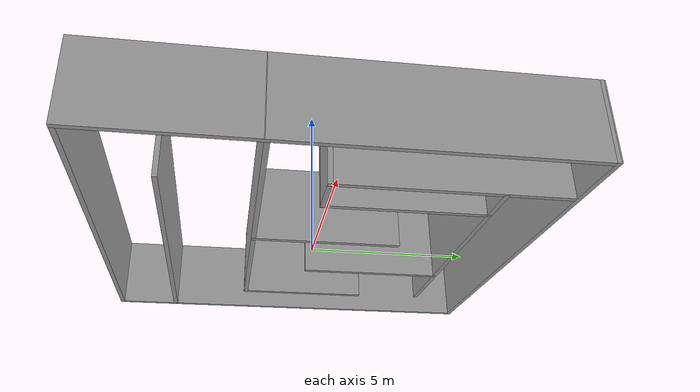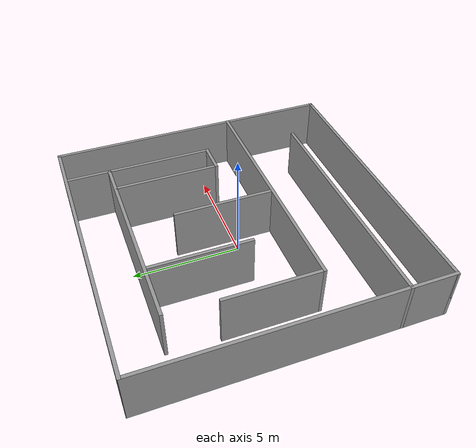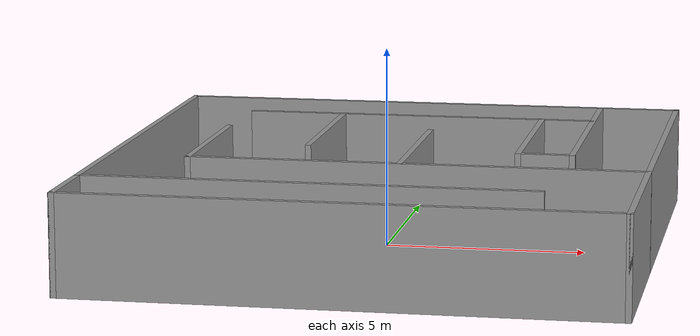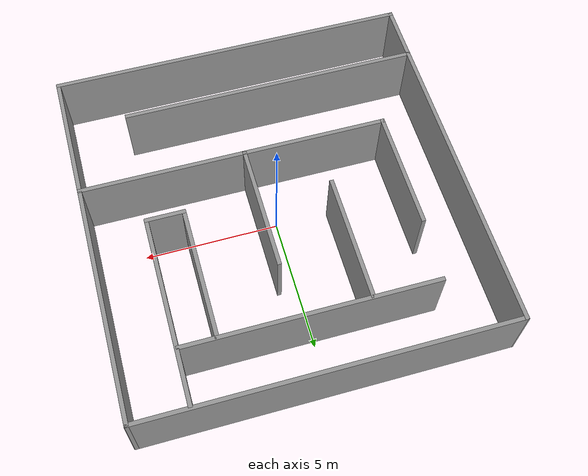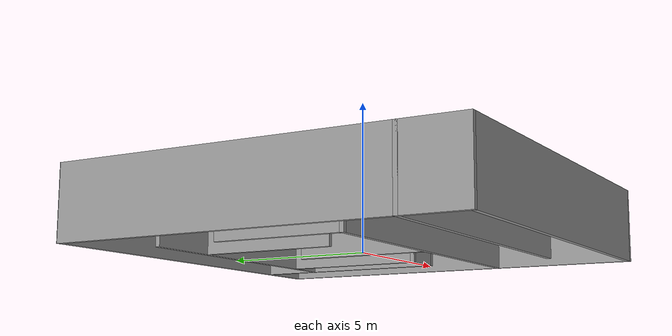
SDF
<?xml version='1.0'?>
<sdf version='1.7'>
  <model name='easy_map'>
    <pose>0.046986 0.001167 0 0 -0 0</pose>
    <link name='Wall_0'>
      <collision name='Wall_0_Collision'>
        <geometry>
          <box>
            <size>11.25 0.15 2.5</size>
          </box>
        </geometry>
        <pose>0 0 1.25 0 -0 0</pose>
      </collision>
      <visual name='Wall_0_Visual'>
        <pose>0 0 1.25 0 -0 0</pose>
        <geometry>
          <box>
            <size>11.25 0.15 2.5</size>
          </box>
        </geometry>
        <material>
          <script>
            <uri>file://media/materials/scripts/gazebo.material</uri>
            <name>Gazebo/Grey</name>
          </script>
          <ambient>1 1 1 1</ambient>
        </material>
        <meta>
          <layer>0</layer>
        </meta>
      </visual>
      <pose>-1.12665 -4.69566 0 0 -0 0</pose>
    </link>
    <link name='Wall_10'>
      <collision name='Wall_10_Collision'>
        <geometry>
          <box>
            <size>13.5 0.15 2.5</size>
          </box>
        </geometry>
        <pose>0 0 1.25 0 -0 0</pose>
      </collision>
      <visual name='Wall_10_Visual'>
        <pose>0 0 1.25 0 -0 0</pose>
        <geometry>
          <box>
            <size>13.5 0.15 2.5</size>
          </box>
        </geometry>
        <material>
          <script>
            <uri>file://media/materials/scripts/gazebo.material</uri>
            <name>Gazebo/Grey</name>
          </script>
          <ambient>1 1 1 1</ambient>
        </material>
        <meta>
          <layer>0</layer>
        </meta>
      </visual>
      <pose>0.001646 6.79563 0 0 -0 3.14159</pose>
    </link>
    <link name='Wall_11'>
      <collision name='Wall_11_Collision'>
        <geometry>
          <box>
            <size>11.6413 0.15 2.5</size>
          </box>
        </geometry>
        <pose>0 0 1.25 0 -0 0</pose>
      </collision>
      <visual name='Wall_11_Visual'>
        <pose>0 0 1.25 0 -0 0</pose>
        <geometry>
          <box>
            <size>11.6413 0.15 2.5</size>
          </box>
        </geometry>
        <material>
          <script>
            <uri>file://media/materials/scripts/gazebo.material</uri>
            <name>Gazebo/Grey</name>
          </script>
          <ambient>1 1 1 1</ambient>
        </material>
        <meta>
          <layer>0</layer>
        </meta>
      </visual>
      <pose>-6.675 1.04999 0 0 -0 -1.57108</pose>
    </link>
    <link name='Wall_13'>
      <collision name='Wall_13_Collision'>
        <geometry>
          <box>
            <size>9.25 0.15 2.5</size>
          </box>
        </geometry>
        <pose>0 0 1.25 0 -0 0</pose>
      </collision>
      <visual name='Wall_13_Visual'>
        <pose>0 0 1.25 0 -0 0</pose>
        <geometry>
          <box>
            <size>9.25 0.15 2.5</size>
          </box>
        </geometry>
        <material>
          <script>
            <uri>file://media/materials/scripts/gazebo.material</uri>
            <name>Gazebo/Grey</name>
          </script>
          <ambient>1 1 1 1</ambient>
        </material>
        <meta>
          <layer>0</layer>
        </meta>
      </visual>
      <pose>0.027963 4.74741 0 0 -0 0</pose>
    </link>
    <link name='Wall_16'>
      <collision name='Wall_16_Collision'>
        <geometry>
          <box>
            <size>7 0.15 2.5</size>
          </box>
        </geometry>
        <pose>0 0 1.25 0 -0 0</pose>
      </collision>
      <visual name='Wall_16_Visual'>
        <pose>0 0 1.25 0 -0 0</pose>
        <geometry>
          <box>
            <size>7 0.15 2.5</size>
          </box>
        </geometry>
        <material>
          <script>
            <uri>file://media/materials/scripts/gazebo.material</uri>
            <name>Gazebo/Grey</name>
          </script>
          <ambient>1 1 1 1</ambient>
        </material>
        <meta>
          <layer>0</layer>
        </meta>
      </visual>
      <pose>4.63414 3.28487 0 0 -0 -1.5708</pose>
    </link>
    <link name='Wall_17'>
      <collision name='Wall_17_Collision'>
        <geometry>
          <box>
            <size>1.5 0.15 2.5</size>
          </box>
        </geometry>
        <pose>0 0 1.25 0 -0 0</pose>
      </collision>
      <visual name='Wall_17_Visual'>
        <pose>0 0 1.25 0 -0 0</pose>
        <geometry>
          <box>
            <size>1.5 0.15 2.5</size>
          </box>
        </geometry>
        <material>
          <script>
            <uri>file://media/materials/scripts/gazebo.material</uri>
            <name>Gazebo/Grey</name>
          </script>
          <ambient>1 1 1 1</ambient>
        </material>
        <meta>
          <layer>0</layer>
        </meta>
      </visual>
      <pose>3.95914 -0.140128 0 0 -0 3.14159</pose>
    </link>
    <link name='Wall_18'>
      <collision name='Wall_18_Collision'>
        <geometry>
          <box>
            <size>5 0.15 2.5</size>
          </box>
        </geometry>
        <pose>0 0 1.25 0 -0 0</pose>
      </collision>
      <visual name='Wall_18_Visual'>
        <pose>0 0 1.25 0 -0 0</pose>
        <geometry>
          <box>
            <size>5 0.15 2.5</size>
          </box>
        </geometry>
        <material>
          <script>
            <uri>file://media/materials/scripts/gazebo.material</uri>
            <name>Gazebo/Grey</name>
          </script>
          <ambient>1 1 1 1</ambient>
        </material>
        <meta>
          <layer>0</layer>
        </meta>
      </visual>
      <pose>3.28414 2.28487 0 0 -0 1.5708</pose>
    </link>
    <link name='Wall_2'>
      <collision name='Wall_2_Collision'>
        <geometry>
          <box>
            <size>2.25 0.15 2.5</size>
          </box>
        </geometry>
        <pose>0 0 1.25 0 -0 0</pose>
      </collision>
      <visual name='Wall_2_Visual'>
        <pose>0 0 1.25 0 -0 0</pose>
        <geometry>
          <box>
            <size>2.25 0.15 2.5</size>
          </box>
        </geometry>
        <material>
          <script>
            <uri>file://media/materials/scripts/gazebo.material</uri>
            <name>Gazebo/Grey</name>
          </script>
          <ambient>1 1 1 1</ambient>
        </material>
        <meta>
          <layer>0</layer>
        </meta>
      </visual>
      <pose>-6.67665 -5.74566 0 0 -0 -1.5708</pose>
    </link>
    <link name='Wall_20'>
      <collision name='Wall_20_Collision'>
        <geometry>
          <box>
            <size>4.75 0.15 2.5</size>
          </box>
        </geometry>
        <pose>0 0 1.25 0 -0 0</pose>
      </collision>
      <visual name='Wall_20_Visual'>
        <pose>0 0 1.25 0 -0 0</pose>
        <geometry>
          <box>
            <size>4.75 0.15 2.5</size>
          </box>
        </geometry>
        <material>
          <script>
            <uri>file://media/materials/scripts/gazebo.material</uri>
            <name>Gazebo/Grey</name>
          </script>
          <ambient>1 1 1 1</ambient>
        </material>
        <meta>
          <layer>0</layer>
        </meta>
      </visual>
      <pose>0.616647 0.37655 0 0 -0 1.5708</pose>
    </link>
    <link name='Wall_22'>
      <collision name='Wall_22_Collision'>
        <geometry>
          <box>
            <size>4.75 0.15 2.5</size>
          </box>
        </geometry>
        <pose>0 0 1.25 0 -0 0</pose>
      </collision>
      <visual name='Wall_22_Visual'>
        <pose>0 0 1.25 0 -0 0</pose>
        <geometry>
          <box>
            <size>4.75 0.15 2.5</size>
          </box>
        </geometry>
        <material>
          <script>
            <uri>file://media/materials/scripts/gazebo.material</uri>
            <name>Gazebo/Grey</name>
          </script>
          <ambient>1 1 1 1</ambient>
        </material>
        <meta>
          <layer>0</layer>
        </meta>
      </visual>
      <pose>-2.06997 2.4 0 0 -0 -1.5708</pose>
    </link>
    <link name='Wall_3'>
      <collision name='Wall_3_Collision'>
        <geometry>
          <box>
            <size>13.5 0.15 2.5</size>
          </box>
        </geometry>
        <pose>0 0 1.25 0 -0 0</pose>
      </collision>
      <visual name='Wall_3_Visual'>
        <pose>0 0 1.25 0 -0 0</pose>
        <geometry>
          <box>
            <size>13.5 0.15 2.5</size>
          </box>
        </geometry>
        <material>
          <script>
            <uri>file://media/materials/scripts/gazebo.material</uri>
            <name>Gazebo/Grey</name>
          </script>
          <ambient>1 1 1 1</ambient>
        </material>
        <meta>
          <layer>0</layer>
        </meta>
      </visual>
      <pose>-0.001653 -6.79566 0 0 -0 0</pose>
    </link>
    <link name='Wall_4'>
      <collision name='Wall_4_Collision'>
        <geometry>
          <box>
            <size>5 0.15 2.5</size>
          </box>
        </geometry>
        <pose>0 0 1.25 0 -0 0</pose>
      </collision>
      <visual name='Wall_4_Visual'>
        <pose>0 0 1.25 0 -0 0</pose>
        <geometry>
          <box>
            <size>5 0.15 2.5</size>
          </box>
        </geometry>
        <material>
          <script>
            <uri>file://media/materials/scripts/gazebo.material</uri>
            <name>Gazebo/Grey</name>
          </script>
          <ambient>1 1 1 1</ambient>
        </material>
        <meta>
          <layer>0</layer>
        </meta>
      </visual>
      <pose>6.67335 -4.37066 0 0 -0 1.5708</pose>
    </link>
    <link name='Wall_5'>
      <collision name='Wall_5_Collision'>
        <geometry>
          <box>
            <size>11.5 0.15 2.5</size>
          </box>
        </geometry>
        <pose>0 0 1.25 0 -0 0</pose>
      </collision>
      <visual name='Wall_5_Visual'>
        <pose>0 0 1.25 0 -0 0</pose>
        <geometry>
          <box>
            <size>11.5 0.15 2.5</size>
          </box>
        </geometry>
        <material>
          <script>
            <uri>file://media/materials/scripts/gazebo.material</uri>
            <name>Gazebo/Grey</name>
          </script>
          <ambient>1 1 1 1</ambient>
        </material>
        <meta>
          <layer>0</layer>
        </meta>
      </visual>
      <pose>0.998347 -1.94566 0 0 -0 3.14159</pose>
    </link>
    <link name='Wall_6'>
      <collision name='Wall_6_Collision'>
        <geometry>
          <box>
            <size>4.5 0.15 2.5</size>
          </box>
        </geometry>
        <pose>0 0 1.25 0 -0 0</pose>
      </collision>
      <visual name='Wall_6_Visual'>
        <pose>0 0 1.25 0 -0 0</pose>
        <geometry>
          <box>
            <size>4.5 0.15 2.5</size>
          </box>
        </geometry>
        <material>
          <script>
            <uri>file://media/materials/scripts/gazebo.material</uri>
            <name>Gazebo/Grey</name>
          </script>
          <ambient>1 1 1 1</ambient>
        </material>
        <meta>
          <layer>0</layer>
        </meta>
      </visual>
      <pose>-4.67665 0.229343 0 0 -0 1.5708</pose>
    </link>
    <link name='Wall_8'>
      <collision name='Wall_8_Collision'>
        <geometry>
          <box>
            <size>8.89129 0.15 2.5</size>
          </box>
        </geometry>
        <pose>0 0 1.25 0 -0 0</pose>
      </collision>
      <visual name='Wall_8_Visual'>
        <pose>0 0 1.25 0 -0 0</pose>
        <geometry>
          <box>
            <size>8.89129 0.15 2.5</size>
          </box>
        </geometry>
        <material>
          <script>
            <uri>file://media/materials/scripts/gazebo.material</uri>
            <name>Gazebo/Grey</name>
          </script>
          <ambient>1 1 1 1</ambient>
        </material>
        <meta>
          <layer>0</layer>
        </meta>
      </visual>
      <pose>6.675 2.42499 0 0 -0 -1.57117</pose>
    </link>
    <static>1</static>
  </model>
</sdf>
